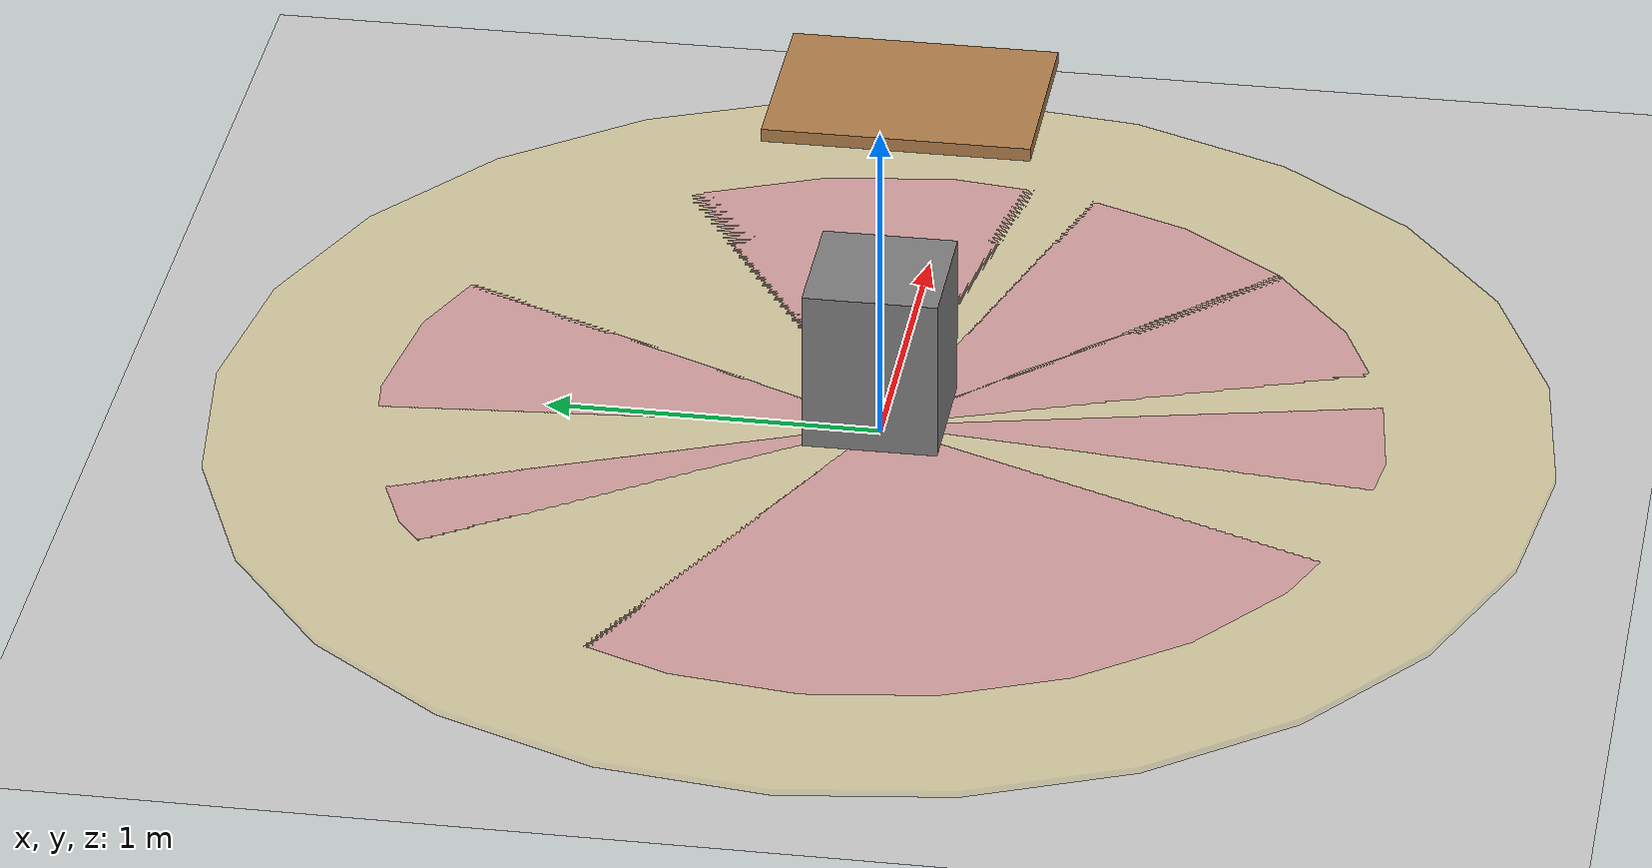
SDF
<sdf version="1.6">
 <world name="human_interaction_demo">
  <physics type="ode">
   <real_time_update_rate>1000.0</real_time_update_rate>
   <max_step_size>0.001</max_step_size>
   <real_time_factor>1</real_time_factor>
  </physics>
  <plugin name="gazebo_ros_state" filename="libgazebo_ros_state.so">
   <ros><namespace>/gazebo</namespace></ros>
   <update_rate>1.0</update_rate>
  </plugin>
  <plugin name="gazebo_ros_factory" filename="libgazebo_ros_factory.so">
   <ros><namespace>/gazebo</namespace></ros>
  </plugin>
  <include><uri>model://ground_plane</uri></include>
  <include><uri>model://sun</uri></include>
  <model name="robot_table">
   <static>true</static>
   <pose>0 0 0.3 0 0 0</pose>
   <link name="link">
    <collision name="collision"><geometry><box><size>0.4 0.4 0.6</size></box></geometry></collision>
    <visual name="visual">
     <geometry><box><size>0.4 0.4 0.5</size></box></geometry>
     <material><ambient>0.5 0.5 0.5 1</ambient><diffuse>0.5 0.5 0.5 1</diffuse></material>
    </visual>
   </link>
  </model>
  <model name="work_table">
   <static>true</static>
   <pose>0.6 0.0 0.8 0 0 0</pose>
   <link name="link">
    <collision name="collision"><geometry><box><size>0.6 0.8 0.04</size></box></geometry></collision>
    <visual name="visual">
     <geometry><box><size>0.6 0.8 0.04</size></box></geometry>
     <material>
      <script><uri>file://media/materials/scripts/gazebo.material</uri><name>Gazebo/Wood</name></script>
     </material>
    </visual>
   </link>
  </model>
  <model name="warning_zone">
   <static>true</static>
   <pose>0 0 0.01 0 0 0</pose>
   <link name="link">
    <visual name="visual">
     <cast_shadows>false</cast_shadows>
     <geometry><cylinder><radius>2.0</radius><length>0.02</length></cylinder></geometry>
     <material>
      <ambient>1 0.8 0 0.2</ambient>
      <diffuse>1 0.8 0 0.2</diffuse>
      <transparency>0.8</transparency>
     </material>
    </visual>
   </link>
  </model>
  <model name="stop_zone">
   <static>true</static>
   <pose>0 0 0.01 0 0 0</pose>
   <link name="link">
    <visual name="visual">
     <cast_shadows>false</cast_shadows>
     <geometry><cylinder><radius>1.5</radius><length>0.02</length></cylinder></geometry>
     <material><ambient>1 0 0 0.2</ambient><diffuse>1 0 0 0.2</diffuse><transparency>0.8</transparency></material>
    </visual>
   </link>
  </model>
 </world>
</sdf>
